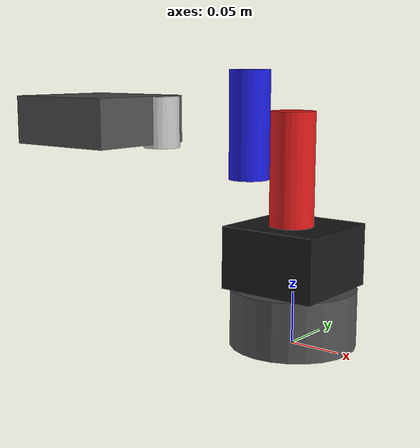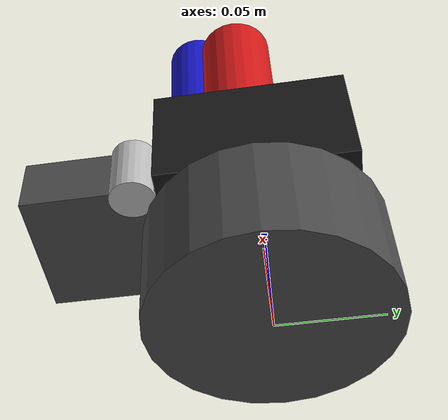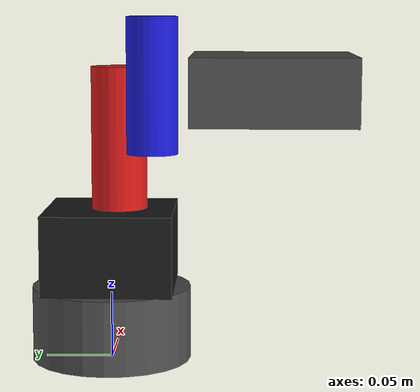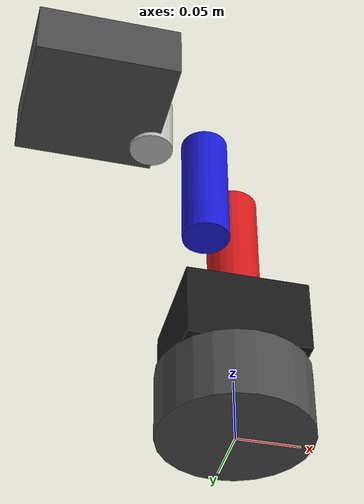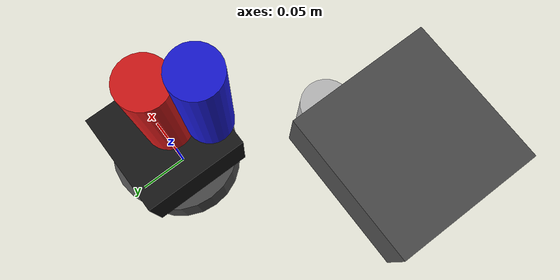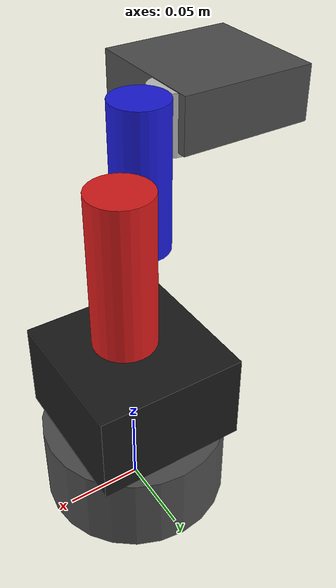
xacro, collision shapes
<?xml version="1.0"?>
<robot xmlns:xacro="http://www.ros.org/wiki/xacro" name="robot_arm_5dof">

  <!-- Switch to toggle CAD STL mesh visuals or simple primitives -->
  <xacro:property name="use_mesh"          value="true"/>

  <!-- Base platform (measured from CAD STL: r=60.6mm, h=56mm) -->
  <xacro:property name="base_radius"       value="0.0606"/>
  <xacro:property name="base_height"       value="0.056"/>
  <xacro:property name="base_mass"         value="0.8"/>

  <!-- Waist rotation servo housing (measured from CAD STL: 97x68x97mm, h=60mm to pivot) -->
  <xacro:property name="waist_x"           value="0.097"/>
  <xacro:property name="waist_y"           value="0.097"/>
  <xacro:property name="waist_z"           value="0.060"/>
  <xacro:property name="waist_mass"        value="0.15"/>

  <!-- Link 1 — Shoulder to Elbow (pivot-to-pivot distance: 120mm) -->
  <xacro:property name="link1_radius"      value="0.021"/>
  <xacro:property name="link1_length"      value="0.12"/>
  <xacro:property name="link1_mass"        value="0.20"/>

  <!-- Link 2 — Elbow to Wrist (pivot-to-pivot distance: 100mm) -->
  <xacro:property name="link2_radius"      value="0.019"/>
  <xacro:property name="link2_length"      value="0.10"/>
  <xacro:property name="link2_mass"        value="0.15"/>

  <!-- Link 3 — Wrist pitch (measured from CAD STL: length 46mm) -->
  <xacro:property name="link3_radius"      value="0.0165"/>
  <xacro:property name="link3_length"      value="0.046"/>
  <xacro:property name="link3_mass"        value="0.10"/>

  <!-- Wrist roll (measured from CAD STL Blue Servo: 30mm) -->
  <xacro:property name="wrist_roll_radius" value="0.012"/>
  <xacro:property name="wrist_roll_length" value="0.030"/>
  <xacro:property name="wrist_roll_mass"   value="0.05"/>

  <!-- Gripper base (measured from CAD STL: 53x77x28mm) -->
  <xacro:property name="gripper_base_x"    value="0.053"/>
  <xacro:property name="gripper_base_y"    value="0.077"/>
  <xacro:property name="gripper_base_z"    value="0.028"/>
  <xacro:property name="gripper_base_mass" value="0.04"/>

  <!-- Gripper fingers (measured from CAD STL: 65x19x8.5mm) -->
  <xacro:property name="finger_x"          value="0.019"/>
  <xacro:property name="finger_y"          value="0.0085"/>
  <xacro:property name="finger_z"          value="0.045"/>
  <xacro:property name="finger_mass"       value="0.01"/>

  <!-- Joint velocity / effort limits -->
  <xacro:property name="revolute_vel"      value="1.5708"/>
  <xacro:property name="revolute_eff"      value="10.0"/>
  <xacro:property name="wrist_vel"         value="3.14159"/>
  <xacro:property name="wrist_eff"         value="5.0"/>
  <xacro:property name="gripper_vel"       value="0.05"/>
  <xacro:property name="gripper_eff"       value="5.0"/>

  <!-- Mathematical constants (pi is built-in to xacro) -->

  <!-- ===================================================================
       XACRO MACROS — Inertia helpers
  ==================================================================== -->

  <!-- Inertia of a solid cylinder (aligned along Z-axis) -->
  <xacro:macro name="cylinder_inertia" params="mass radius length">
    <inertial>
      <mass value="${mass}"/>
      <inertia ixx="${(1.0/12.0)*mass*(3.0*radius*radius + length*length)}"
               ixy="0.0" ixz="0.0"
               iyy="${(1.0/12.0)*mass*(3.0*radius*radius + length*length)}"
               iyz="0.0"
               izz="${0.5*mass*radius*radius}"/>
    </inertial>
  </xacro:macro>

  <!-- Inertia of a solid box -->
  <xacro:macro name="box_inertia" params="mass x y z">
    <inertial>
      <mass value="${mass}"/>
      <inertia ixx="${(1.0/12.0)*mass*(y*y + z*z)}"
               ixy="0.0" ixz="0.0"
               iyy="${(1.0/12.0)*mass*(x*x + z*z)}"
               iyz="0.0"
               izz="${(1.0/12.0)*mass*(x*x + y*y)}"/>
    </inertial>
  </xacro:macro>

  <!-- ===================================================================
       MATERIAL COLORS (for RViz display)
  ==================================================================== -->
  <material name="DarkGrey">
    <color rgba="0.3 0.3 0.3 1.0"/>
  </material>
  <material name="Silver">
    <color rgba="0.75 0.75 0.75 1.0"/>
  </material>
  <material name="Red">
    <color rgba="0.85 0.1 0.1 1.0"/>
  </material>
  <material name="Blue">
    <color rgba="0.1 0.1 0.85 1.0"/>
  </material>
  <material name="Orange">
    <color rgba="1.0 0.55 0.0 1.0"/>
  </material>
  <material name="Black">
    <color rgba="0.1 0.1 0.1 1.0"/>
  </material>
  <material name="White">
    <color rgba="0.95 0.95 0.95 1.0"/>
  </material>

  <!-- ===================================================================
       INCLUDE GAZEBO-SPECIFIC SETTINGS
  ==================================================================== -->
  <xacro:include filename="$(find robot_arm_description)/urdf/robot_arm_gazebo.xacro"/>

  <!-- ===================================================================
       WORLD LINK  (fixed reference for Gazebo)
  ==================================================================== -->
  <link name="world"/>

  <joint name="fixed_world" type="fixed">
    <parent link="world"/>
    <child  link="base_link"/>
    <origin xyz="0 0 0" rpy="0 0 0"/>
  </joint>

  <!-- ===================================================================
       BASE LINK — Stationary platform
  ==================================================================== -->
  <link name="base_link">
    <visual>
      <origin xyz="0 0 0" rpy="0 0 0"/>
      <geometry>
        <mesh filename="package://robot_arm_description/meshes/base_link.stl" scale="1 1 1"/>
      </geometry>
      <material name="DarkGrey"/>
    </visual>
    <collision>
      <origin xyz="0 0 ${base_height/2.0}" rpy="0 0 0"/>
      <geometry>
        <cylinder radius="${base_radius}" length="${base_height}"/>
      </geometry>
    </collision>
    <xacro:cylinder_inertia mass="${base_mass}" radius="${base_radius}" length="${base_height}"/>
  </link>

  <!-- ===================================================================
       JOINT 1 — Waist rotation (revolute, Z-axis)
  ==================================================================== -->
  <joint name="joint1_waist" type="revolute">
    <parent link="base_link"/>
    <child  link="waist_link"/>
    <origin xyz="0 0 0.0560" rpy="0 0 0"/>
    <axis xyz="0 0 1"/>
    <limit lower="${-pi}" upper="${pi}"
           velocity="${revolute_vel}" effort="${revolute_eff}"/>
    <dynamics damping="0.1" friction="0.05"/>
  </joint>

  <!-- WAIST LINK — Servo housing that rotates on the base -->
  <link name="waist_link">
    <visual>
      <origin xyz="0 0 0" rpy="0 0 0"/>
      <geometry>
        <mesh filename="package://robot_arm_description/meshes/waist_link.stl" scale="1 1 1"/>
      </geometry>
      <material name="Black"/>
    </visual>
    <collision>
      <origin xyz="0 0 0.030" rpy="0 0 0"/>
      <geometry>
        <box size="${waist_x} ${waist_y} ${waist_z}"/>
      </geometry>
    </collision>
    <xacro:box_inertia mass="${waist_mass}" x="${waist_x}" y="${waist_y}" z="${waist_z}"/>
  </link>

  <!-- ===================================================================
       JOINT 2 — Shoulder pitch (revolute)
  ==================================================================== -->
  <joint name="joint2_shoulder" type="revolute">
    <parent link="waist_link"/>
    <child  link="shoulder_link"/>
    <origin xyz="-0.0040 -0.0104 0.0499" rpy="0 0 0"/>
    <axis xyz="-0.5948 0.6550 -0.4660"/>
    <limit lower="${-pi/2.0}" upper="${pi/2.0}"
           velocity="${revolute_vel}" effort="15.0"/>
    <dynamics damping="0.1" friction="0.05"/>
  </joint>

  <!-- SHOULDER LINK (Link 1) — Shoulder to Elbow -->
  <link name="shoulder_link">
    <visual>
      <origin xyz="0 0 0" rpy="0 0 0"/>
      <geometry>
        <mesh filename="package://robot_arm_description/meshes/shoulder_link.stl" scale="1 1 1"/>
      </geometry>
      <material name="Red"/>
    </visual>
    <collision>
      <origin xyz="0.005 0.004 0.057" rpy="0 0 0"/>
      <geometry>
        <cylinder radius="${link1_radius}" length="${link1_length}"/>
      </geometry>
    </collision>
    <xacro:cylinder_inertia mass="${link1_mass}" radius="${link1_radius}" length="${link1_length}"/>
  </link>

  <!-- ===================================================================
       JOINT 3 — Elbow pitch (revolute)
  ==================================================================== -->
  <joint name="joint3_elbow" type="revolute">
    <parent link="shoulder_link"/>
    <child  link="elbow_link"/>
    <origin xyz="0.0104 0.0089 0.1145" rpy="0 0 0"/>
    <axis xyz="-0.2549 0.9635 0.0824"/>
    <limit lower="${-pi/2.0}" upper="${pi/2.0}"
           velocity="${revolute_vel}" effort="${revolute_eff}"/>
    <dynamics damping="0.08" friction="0.04"/>
  </joint>

  <!-- ELBOW LINK (Link 2) — Elbow to Wrist -->
  <link name="elbow_link">
    <visual>
      <origin xyz="0 0 0" rpy="0 0 0"/>
      <geometry>
        <mesh filename="package://robot_arm_description/meshes/elbow_link.stl" scale="1 1 1"/>
      </geometry>
      <material name="Blue"/>
    </visual>
    <collision>
      <origin xyz="-0.035 -0.032 -0.010" rpy="0 0 0"/>
      <geometry>
        <cylinder radius="${link2_radius}" length="${link2_length}"/>
      </geometry>
    </collision>
    <xacro:cylinder_inertia mass="${link2_mass}" radius="${link2_radius}" length="${link2_length}"/>
  </link>

  <!-- ===================================================================
       JOINT 4 — Wrist pitch (revolute)
  ==================================================================== -->
  <joint name="joint4_wrist_pitch" type="revolute">
    <parent link="elbow_link"/>
    <child  link="wrist_pitch_link"/>
    <origin xyz="-0.07397 -0.07358 -0.00532" rpy="0 0 0"/>
    <axis xyz="-0.6698 0.7424 -0.0088"/>
    <limit lower="${-pi/2.0}" upper="${pi/2.0}"
           velocity="${wrist_vel}" effort="${wrist_eff}"/>
    <dynamics damping="0.05" friction="0.03"/>
  </joint>

  <!-- WRIST PITCH LINK (Link 3) -->
  <link name="wrist_pitch_link">
    <visual>
      <origin xyz="0 0 0" rpy="0 0 0"/>
      <geometry>
        <mesh filename="package://robot_arm_description/meshes/wrist_pitch_link.stl" scale="1 1 1"/>
      </geometry>
      <material name="Silver"/>
    </visual>
    <collision>
      <origin xyz="-0.0186 -0.0145 -0.0015" rpy="0 0 0"/>
      <geometry>
        <cylinder radius="${link3_radius}" length="${link3_length}"/>
      </geometry>
    </collision>
    <xacro:cylinder_inertia mass="${link3_mass}" radius="${link3_radius}" length="${link3_length}"/>
  </link>

  <!-- ===================================================================
       JOINT 5 — Wrist roll (revolute)
  ==================================================================== -->
  <joint name="joint5_wrist_roll" type="revolute">
    <parent link="wrist_pitch_link"/>
    <child  link="wrist_roll_link"/>
    <origin xyz="-0.04414 -0.04642 0.00664" rpy="0 0 0"/>
    <axis xyz="-0.0313 -0.0164 0.9994"/>
    <limit lower="${-pi}" upper="${pi}"
           velocity="${wrist_vel}" effort="${wrist_eff}"/>
    <dynamics damping="0.03" friction="0.02"/>
  </joint>

  <!-- WRIST ROLL LINK (Virtual connection to Gripper) -->
  <link name="wrist_roll_link">
    <inertial>
      <mass value="${wrist_roll_mass}"/>
      <inertia ixx="0.0001" ixy="0" ixz="0" iyy="0.0001" iyz="0" izz="0.0001"/>
    </inertial>
  </link>

  <!-- ===================================================================
       FIXED JOINT — Wrist roll to Gripper base
  ==================================================================== -->
  <joint name="gripper_base_joint" type="fixed">
    <parent link="wrist_roll_link"/>
    <child  link="gripper_base_link"/>
    <origin xyz="0 0 0" rpy="0 0 0"/>
  </joint>

  <!-- GRIPPER BASE LINK (Complete Mechanical Gripper Assembly) -->
  <link name="gripper_base_link">
    <visual>
      <origin xyz="0 0 0" rpy="0 0 0"/>
      <geometry>
        <mesh filename="package://robot_arm_description/meshes/gripper_assembly.stl" scale="1 1 1"/>
      </geometry>
      <material name="DarkGrey"/>
    </visual>
    <collision>
      <origin xyz="-0.0234 0.0033 -0.0061" rpy="0 0 0"/>
      <geometry>
        <box size="0.106 0.104 0.043"/>
      </geometry>
    </collision>
    <xacro:box_inertia mass="${gripper_base_mass}" x="${gripper_base_x}" y="${gripper_base_y}" z="${gripper_base_z}"/>
  </link>

  <joint name="joint6_gripper_left" type="prismatic">
    <parent link="gripper_base_link"/>
    <child  link="gripper_finger_left"/>
    <origin xyz="0 0 0" rpy="0 0 0"/>
    <axis xyz="0 1 0"/>
    <limit lower="0.0" upper="0.015"
           velocity="${gripper_vel}" effort="${gripper_eff}"/>
    <dynamics damping="0.01" friction="0.01"/>
  </joint>

  <link name="gripper_finger_left">
    <inertial>
      <mass value="${finger_mass}"/>
      <inertia ixx="0.00001" ixy="0" ixz="0" iyy="0.00001" iyz="0" izz="0.00001"/>
    </inertial>
  </link>

  <joint name="joint7_gripper_right" type="prismatic">
    <parent link="gripper_base_link"/>
    <child  link="gripper_finger_right"/>
    <origin xyz="0 0 0" rpy="0 0 0"/>
    <axis xyz="0 -1 0"/>
    <limit lower="0.0" upper="0.015"
           velocity="${gripper_vel}" effort="${gripper_eff}"/>
    <mimic joint="joint6_gripper_left" multiplier="1.0" offset="0.0"/>
    <dynamics damping="0.01" friction="0.01"/>
  </joint>

  <link name="gripper_finger_right">
    <inertial>
      <mass value="${finger_mass}"/>
      <inertia ixx="0.00001" ixy="0" ixz="0" iyy="0.00001" iyz="0" izz="0.00001"/>
    </inertial>
  </link>

</robot>
